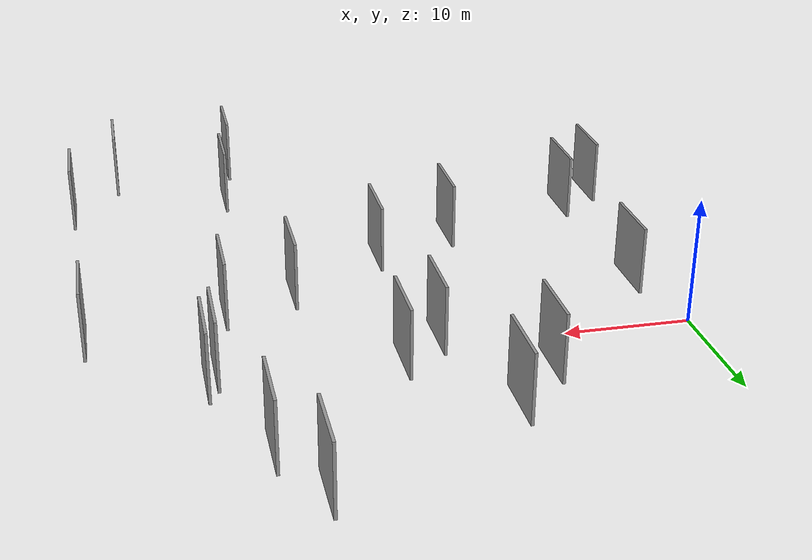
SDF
<sdf version="1.6">
 <world name="default">
  <scene>
   <sky><clouds><speed>12</speed></clouds></sky>
   <ambient>0.4 0.4 0.4 1</ambient>
   <background>0.7 0.7 0.7 1</background>
   <shadows>1</shadows>
  </scene>
  <gravity>0 0 -9.8066</gravity>
  <magnetic_field>6e-06 2.3e-05 -4.2e-05</magnetic_field>
  <physics default="0" name="default_physics" type="ode">
   <ode>
    <solver>
     <type>quick</type>
     <iters>10</iters>
     <sor>1.0</sor>
     <use_dynamic_moi_rescaling>0</use_dynamic_moi_rescaling>
    </solver>
    <constraints>
     <cfm>0</cfm>
     <erp>0.2</erp>
     <contact_max_correcting_vel>100</contact_max_correcting_vel>
     <contact_surface_layer>0.001</contact_surface_layer>
    </constraints>
   </ode>
   <max_step_size>0.004</max_step_size>
   <real_time_factor>1</real_time_factor>
   <real_time_update_rate>250</real_time_update_rate>
  </physics>
  <light name="sun" type="directional">
   <pose>0 0 10 0 0 0</pose>
   <diffuse>0.8 0.8 0.8 1</diffuse>
   <specular>0.2 0.2 0.2 1</specular>
   <attenuation>
    <range>1000</range>
    <constant>0.9</constant>
    <linear>0.01</linear>
    <quadratic>0.001</quadratic>
   </attenuation>
   <direction>-0.5 0.1 -0.9</direction>
  </light>
  <model name="grey_wall_1">
   <static>1</static>
   <pose>5.9303 1.4692 5.0 0.000000 0.000000 1.570796</pose>
   <link name="link">
    <pose>0 0 2.50 0 0 0</pose>
    <collision name="collision"><geometry><box><size>5.00 0.2 5.00</size></box></geometry></collision>
    <visual name="visual">
     <cast_shadows>0</cast_shadows>
     <geometry><box><size>5.00 0.2 5.00</size></box></geometry>
     <material>
      <script>
       <uri>model://grey_wall/materials/scripts</uri>
       <uri>model://grey_wall/materials/textures</uri>
       <name>vrc/grey_wall</name>
      </script>
     </material>
    </visual>
   </link>
  </model>
  <model name="grey_wall_2">
   <static>1</static>
   <pose>17.1386 -8.8422 5.0 0.000000 0.000000 1.570796</pose>
   <link name="link">
    <pose>0 0 2.50 0 0 0</pose>
    <collision name="collision"><geometry><box><size>5.00 0.2 5.00</size></box></geometry></collision>
    <visual name="visual">
     <cast_shadows>0</cast_shadows>
     <geometry><box><size>5.00 0.2 5.00</size></box></geometry>
     <material>
      <script>
       <uri>model://grey_wall/materials/scripts</uri>
       <uri>model://grey_wall/materials/textures</uri>
       <name>vrc/grey_wall</name>
      </script>
     </material>
    </visual>
   </link>
  </model>
  <model name="grey_wall_3">
   <static>1</static>
   <pose>34.4336 18.6570 5.0 0.000000 0.000000 1.570796</pose>
   <link name="link">
    <pose>0 0 2.50 0 0 0</pose>
    <collision name="collision"><geometry><box><size>5.00 0.2 5.00</size></box></geometry></collision>
    <visual name="visual">
     <cast_shadows>0</cast_shadows>
     <geometry><box><size>5.00 0.2 5.00</size></box></geometry>
     <material>
      <script>
       <uri>model://grey_wall/materials/scripts</uri>
       <uri>model://grey_wall/materials/textures</uri>
       <name>vrc/grey_wall</name>
      </script>
     </material>
    </visual>
   </link>
  </model>
  <model name="grey_wall_4">
   <static>1</static>
   <pose>33.4336 -19.1436 5.0 0.000000 0.000000 1.570796</pose>
   <link name="link">
    <pose>0 0 2.50 0 0 0</pose>
    <collision name="collision"><geometry><box><size>5.00 0.2 5.00</size></box></geometry></collision>
    <visual name="visual">
     <cast_shadows>0</cast_shadows>
     <geometry><box><size>5.00 0.2 5.00</size></box></geometry>
     <material>
      <script>
       <uri>model://grey_wall/materials/scripts</uri>
       <uri>model://grey_wall/materials/textures</uri>
       <name>vrc/grey_wall</name>
      </script>
     </material>
    </visual>
   </link>
  </model>
  <model name="grey_wall_5">
   <static>1</static>
   <pose>45.0033 3.3487 5.0 0.000000 0.000000 1.570796</pose>
   <link name="link">
    <pose>0 0 2.50 0 0 0</pose>
    <collision name="collision"><geometry><box><size>5.00 0.2 5.00</size></box></geometry></collision>
    <visual name="visual">
     <cast_shadows>0</cast_shadows>
     <geometry><box><size>5.00 0.2 5.00</size></box></geometry>
     <material>
      <script>
       <uri>model://grey_wall/materials/scripts</uri>
       <uri>model://grey_wall/materials/textures</uri>
       <name>vrc/grey_wall</name>
      </script>
     </material>
    </visual>
   </link>
  </model>
  <model name="grey_wall_6">
   <static>1</static>
   <pose>23.3025 -5.8635 5.0 0.000000 0.000000 1.570796</pose>
   <link name="link">
    <pose>0 0 2.50 0 0 0</pose>
    <collision name="collision"><geometry><box><size>5.00 0.2 5.00</size></box></geometry></collision>
    <visual name="visual">
     <cast_shadows>0</cast_shadows>
     <geometry><box><size>5.00 0.2 5.00</size></box></geometry>
     <material>
      <script>
       <uri>model://grey_wall/materials/scripts</uri>
       <uri>model://grey_wall/materials/textures</uri>
       <name>vrc/grey_wall</name>
      </script>
     </material>
    </visual>
   </link>
  </model>
  <model name="grey_wall_7">
   <static>1</static>
   <pose>6.6273 -12.5231 5.0 0.000000 0.000000 1.570796</pose>
   <link name="link">
    <pose>0 0 2.50 0 0 0</pose>
    <collision name="collision"><geometry><box><size>5.00 0.2 5.00</size></box></geometry></collision>
    <visual name="visual">
     <cast_shadows>0</cast_shadows>
     <geometry><box><size>5.00 0.2 5.00</size></box></geometry>
     <material>
      <script>
       <uri>model://grey_wall/materials/scripts</uri>
       <uri>model://grey_wall/materials/textures</uri>
       <name>vrc/grey_wall</name>
      </script>
     </material>
    </visual>
   </link>
  </model>
  <model name="grey_wall_8">
   <static>1</static>
   <pose>18.7798 16.6416 5.0 0.000000 0.000000 1.570796</pose>
   <link name="link">
    <pose>0 0 2.50 0 0 0</pose>
    <collision name="collision"><geometry><box><size>5.00 0.2 5.00</size></box></geometry></collision>
    <visual name="visual">
     <cast_shadows>0</cast_shadows>
     <geometry><box><size>5.00 0.2 5.00</size></box></geometry>
     <material>
      <script>
       <uri>model://grey_wall/materials/scripts</uri>
       <uri>model://grey_wall/materials/textures</uri>
       <name>vrc/grey_wall</name>
      </script>
     </material>
    </visual>
   </link>
  </model>
  <model name="grey_wall_9">
   <static>1</static>
   <pose>3.5085 -15.1374 5.0 0.000000 0.000000 1.570796</pose>
   <link name="link">
    <pose>0 0 2.50 0 0 0</pose>
    <collision name="collision"><geometry><box><size>5.00 0.2 5.00</size></box></geometry></collision>
    <visual name="visual">
     <cast_shadows>0</cast_shadows>
     <geometry><box><size>5.00 0.2 5.00</size></box></geometry>
     <material>
      <script>
       <uri>model://grey_wall/materials/scripts</uri>
       <uri>model://grey_wall/materials/textures</uri>
       <name>vrc/grey_wall</name>
      </script>
     </material>
    </visual>
   </link>
  </model>
  <model name="grey_wall_10">
   <static>1</static>
   <pose>32.5442 -25.9459 5.0 0.000000 0.000000 1.570796</pose>
   <link name="link">
    <pose>0 0 2.50 0 0 0</pose>
    <collision name="collision"><geometry><box><size>5.00 0.2 5.00</size></box></geometry></collision>
    <visual name="visual">
     <cast_shadows>0</cast_shadows>
     <geometry><box><size>5.00 0.2 5.00</size></box></geometry>
     <material>
      <script>
       <uri>model://grey_wall/materials/scripts</uri>
       <uri>model://grey_wall/materials/textures</uri>
       <name>vrc/grey_wall</name>
      </script>
     </material>
    </visual>
   </link>
  </model>
  <model name="grey_wall_11">
   <static>1</static>
   <pose>36.8130 9.0150 5.0 0.000000 0.000000 1.570796</pose>
   <link name="link">
    <pose>0 0 2.50 0 0 0</pose>
    <collision name="collision"><geometry><box><size>5.00 0.2 5.00</size></box></geometry></collision>
    <visual name="visual">
     <cast_shadows>0</cast_shadows>
     <geometry><box><size>5.00 0.2 5.00</size></box></geometry>
     <material>
      <script>
       <uri>model://grey_wall/materials/scripts</uri>
       <uri>model://grey_wall/materials/textures</uri>
       <name>vrc/grey_wall</name>
      </script>
     </material>
    </visual>
   </link>
  </model>
  <model name="grey_wall_12">
   <static>1</static>
   <pose>35.4692 0.9886 5.0 0.000000 0.000000 1.570796</pose>
   <link name="link">
    <pose>0 0 2.50 0 0 0</pose>
    <collision name="collision"><geometry><box><size>5.00 0.2 5.00</size></box></geometry></collision>
    <visual name="visual">
     <cast_shadows>0</cast_shadows>
     <geometry><box><size>5.00 0.2 5.00</size></box></geometry>
     <material>
      <script>
       <uri>model://grey_wall/materials/scripts</uri>
       <uri>model://grey_wall/materials/textures</uri>
       <name>vrc/grey_wall</name>
      </script>
     </material>
    </visual>
   </link>
  </model>
  <model name="grey_wall_13">
   <static>1</static>
   <pose>45.5844 -18.0358 5.0 0.000000 0.000000 1.570796</pose>
   <link name="link">
    <pose>0 0 2.50 0 0 0</pose>
    <collision name="collision"><geometry><box><size>5.00 0.2 5.00</size></box></geometry></collision>
    <visual name="visual">
     <cast_shadows>0</cast_shadows>
     <geometry><box><size>5.00 0.2 5.00</size></box></geometry>
     <material>
      <script>
       <uri>model://grey_wall/materials/scripts</uri>
       <uri>model://grey_wall/materials/textures</uri>
       <name>vrc/grey_wall</name>
      </script>
     </material>
    </visual>
   </link>
  </model>
  <model name="grey_wall_14">
   <static>1</static>
   <pose>21.7921 7.3128 5.0 0.000000 0.000000 1.570796</pose>
   <link name="link">
    <pose>0 0 2.50 0 0 0</pose>
    <collision name="collision"><geometry><box><size>5.00 0.2 5.00</size></box></geometry></collision>
    <visual name="visual">
     <cast_shadows>0</cast_shadows>
     <geometry><box><size>5.00 0.2 5.00</size></box></geometry>
     <material>
      <script>
       <uri>model://grey_wall/materials/scripts</uri>
       <uri>model://grey_wall/materials/textures</uri>
       <name>vrc/grey_wall</name>
      </script>
     </material>
    </visual>
   </link>
  </model>
  <model name="grey_wall_15">
   <static>1</static>
   <pose>31.9654 23.3799 5.0 0.000000 0.000000 1.570796</pose>
   <link name="link">
    <pose>0 0 2.50 0 0 0</pose>
    <collision name="collision"><geometry><box><size>5.00 0.2 5.00</size></box></geometry></collision>
    <visual name="visual">
     <cast_shadows>0</cast_shadows>
     <geometry><box><size>5.00 0.2 5.00</size></box></geometry>
     <material>
      <script>
       <uri>model://grey_wall/materials/scripts</uri>
       <uri>model://grey_wall/materials/textures</uri>
       <name>vrc/grey_wall</name>
      </script>
     </material>
    </visual>
   </link>
  </model>
  <model name="grey_wall_16">
   <static>1</static>
   <pose>42.0269 -24.4260 5.0 0.000000 0.000000 1.570796</pose>
   <link name="link">
    <pose>0 0 2.50 0 0 0</pose>
    <collision name="collision"><geometry><box><size>5.00 0.2 5.00</size></box></geometry></collision>
    <visual name="visual">
     <cast_shadows>0</cast_shadows>
     <geometry><box><size>5.00 0.2 5.00</size></box></geometry>
     <material>
      <script>
       <uri>model://grey_wall/materials/scripts</uri>
       <uri>model://grey_wall/materials/textures</uri>
       <name>vrc/grey_wall</name>
      </script>
     </material>
    </visual>
   </link>
  </model>
  <model name="grey_wall_17">
   <static>1</static>
   <pose>30.4009 -1.0589 5.0 0.000000 0.000000 1.570796</pose>
   <link name="link">
    <pose>0 0 2.50 0 0 0</pose>
    <collision name="collision"><geometry><box><size>5.00 0.2 5.00</size></box></geometry></collision>
    <visual name="visual">
     <cast_shadows>0</cast_shadows>
     <geometry><box><size>5.00 0.2 5.00</size></box></geometry>
     <material>
      <script>
       <uri>model://grey_wall/materials/scripts</uri>
       <uri>model://grey_wall/materials/textures</uri>
       <name>vrc/grey_wall</name>
      </script>
     </material>
    </visual>
   </link>
  </model>
  <model name="grey_wall_18">
   <static>1</static>
   <pose>15.3629 12.4063 5.0 0.000000 0.000000 1.570796</pose>
   <link name="link">
    <pose>0 0 2.50 0 0 0</pose>
    <collision name="collision"><geometry><box><size>5.00 0.2 5.00</size></box></geometry></collision>
    <visual name="visual">
     <cast_shadows>0</cast_shadows>
     <geometry><box><size>5.00 0.2 5.00</size></box></geometry>
     <material>
      <script>
       <uri>model://grey_wall/materials/scripts</uri>
       <uri>model://grey_wall/materials/textures</uri>
       <name>vrc/grey_wall</name>
      </script>
     </material>
    </visual>
   </link>
  </model>
  <model name="grey_wall_19">
   <static>1</static>
   <pose>24.7102 9.9286 5.0 0.000000 0.000000 1.570796</pose>
   <link name="link">
    <pose>0 0 2.50 0 0 0</pose>
    <collision name="collision"><geometry><box><size>5.00 0.2 5.00</size></box></geometry></collision>
    <visual name="visual">
     <cast_shadows>0</cast_shadows>
     <geometry><box><size>5.00 0.2 5.00</size></box></geometry>
     <material>
      <script>
       <uri>model://grey_wall/materials/scripts</uri>
       <uri>model://grey_wall/materials/textures</uri>
       <name>vrc/grey_wall</name>
      </script>
     </material>
    </visual>
   </link>
  </model>
  <model name="grey_wall_20">
   <static>1</static>
   <pose>37.5027 10.2665 5.0 0.000000 0.000000 1.570796</pose>
   <link name="link">
    <pose>0 0 2.50 0 0 0</pose>
    <collision name="collision"><geometry><box><size>5.00 0.2 5.00</size></box></geometry></collision>
    <visual name="visual">
     <cast_shadows>0</cast_shadows>
     <geometry><box><size>5.00 0.2 5.00</size></box></geometry>
     <material>
      <script>
       <uri>model://grey_wall/materials/scripts</uri>
       <uri>model://grey_wall/materials/textures</uri>
       <name>vrc/grey_wall</name>
      </script>
     </material>
    </visual>
   </link>
  </model>
 </world>
</sdf>
